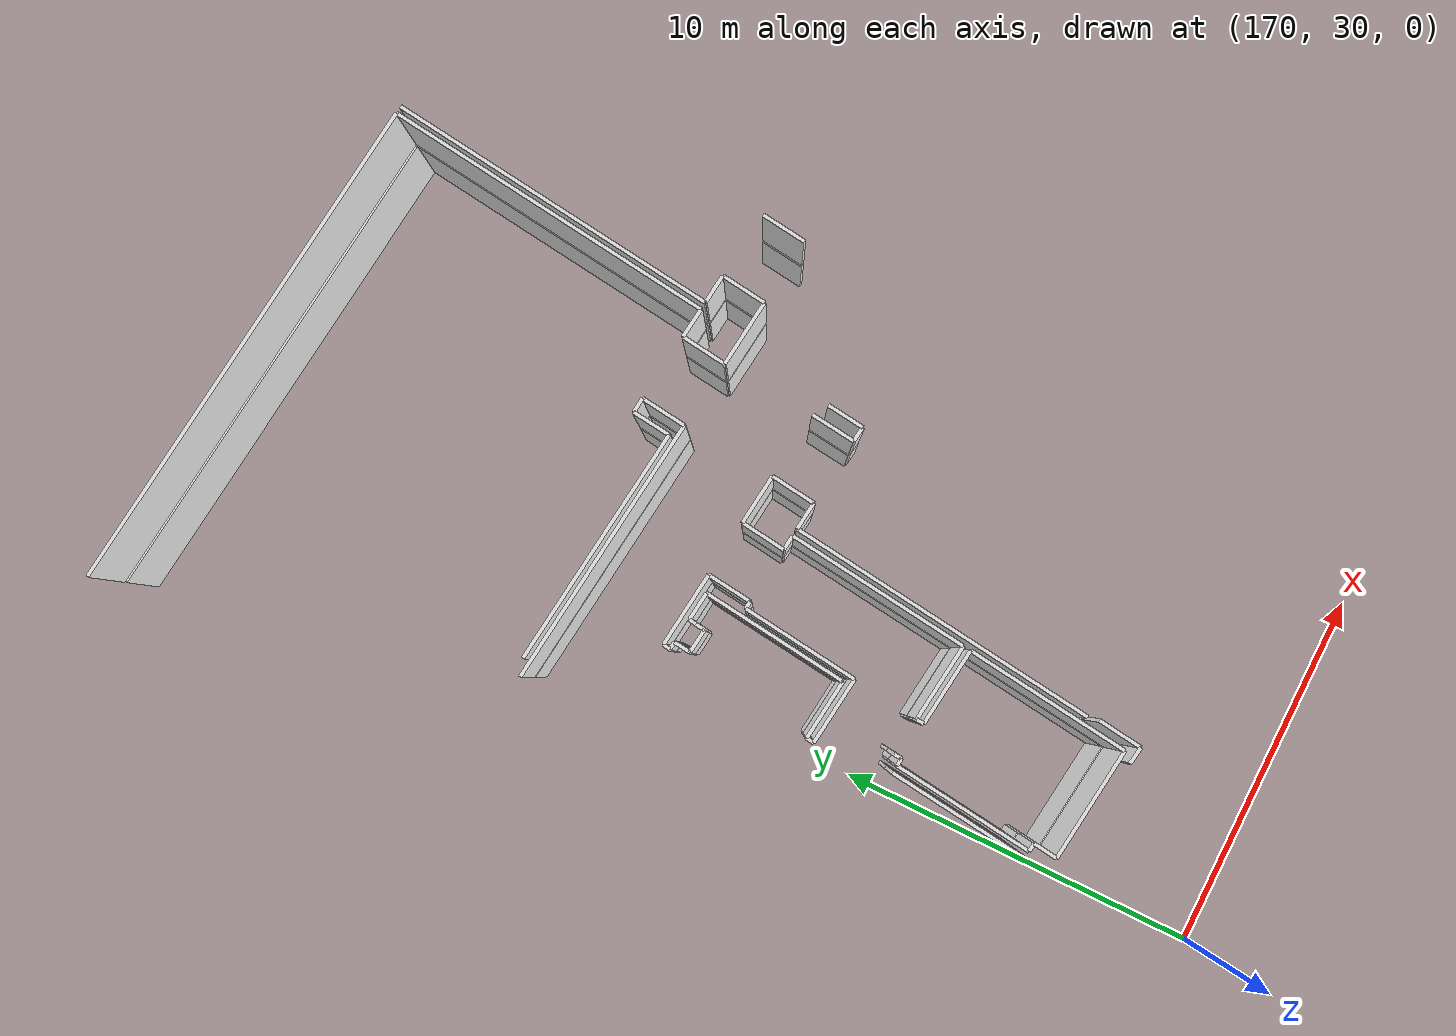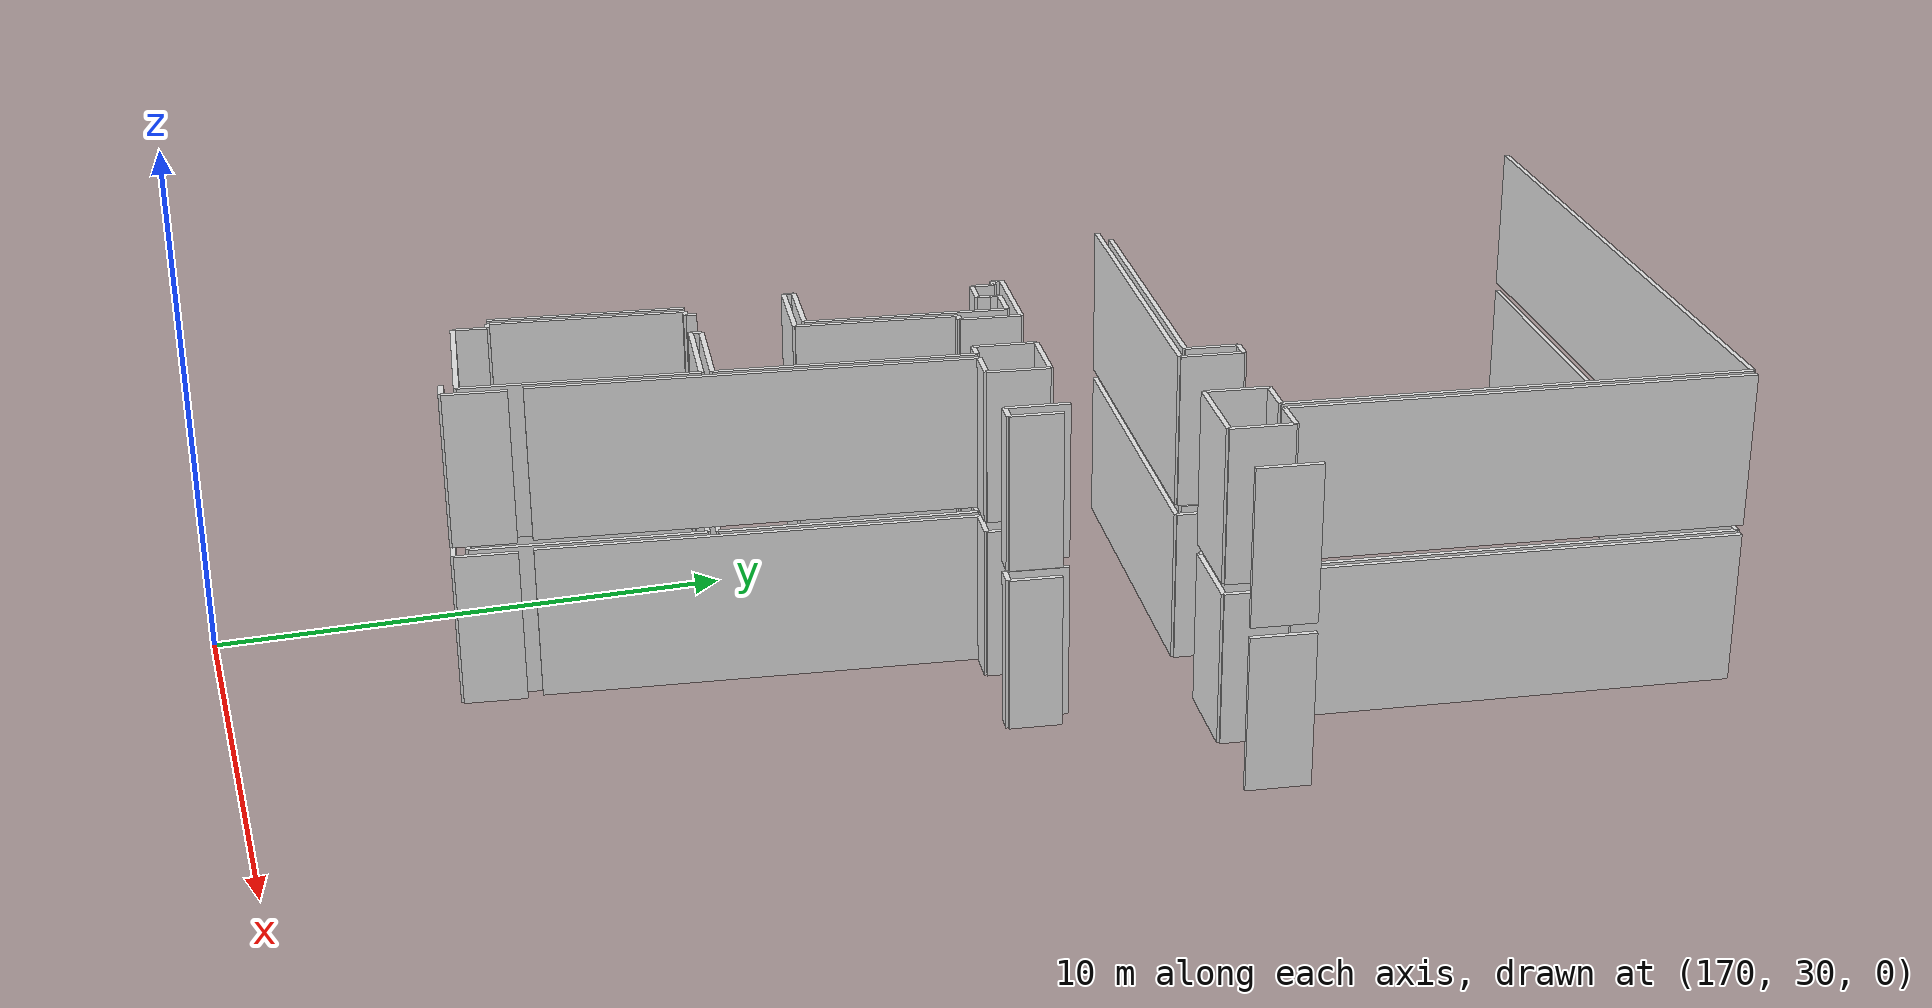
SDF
<sdf version="1.6">
 <world name="default">
  <model name="wall_179.4_48.5_0.0_link">
   <static>true</static>
   <pose>179.35000000000582 48.46499999985099 1.5 0 0 3.026716048357006</pose>
   <link name="link">
    <visual name="visual">
     <geometry><box><size>0.7851751396509952 0.1 3</size></box></geometry>
     <material>
      <script><uri>file://media/materials/scripts/gazebo.material</uri><name>Gazebo/White</name></script>
     </material>
    </visual>
   </link>
  </model>
  <model name="wall_179.5_52.9_0.0_link">
   <static>true</static>
   <pose>179.49500000002445 52.949999999953434 1.5 0 0 1.4508789678012857</pose>
   <link name="link">
    <visual name="visual">
     <geometry><box><size>8.944232779076149 0.1 3</size></box></geometry>
     <material>
      <script><uri>file://media/materials/scripts/gazebo.material</uri><name>Gazebo/White</name></script>
     </material>
    </visual>
   </link>
  </model>
  <model name="wall_170.4_37.5_0.0_link">
   <static>true</static>
   <pose>170.44499999997788 37.53000000002794 1.5 0 0 -1.6899106225096845</pose>
   <link name="link">
    <visual name="visual">
     <geometry><box><size>3.7868324496644155 0.1 3</size></box></geometry>
     <material>
      <script><uri>file://media/materials/scripts/gazebo.material</uri><name>Gazebo/White</name></script>
     </material>
    </visual>
   </link>
  </model>
  <model name="wall_177.6_44.4_0.0_link">
   <static>true</static>
   <pose>177.55999999999767 44.35499999998137 1.5 0 0 -1.6879050713333807</pose>
   <link name="link">
    <visual name="visual">
     <geometry><box><size>1.1982069942122657 0.1 3</size></box></geometry>
     <material>
      <script><uri>file://media/materials/scripts/gazebo.material</uri><name>Gazebo/White</name></script>
     </material>
    </visual>
   </link>
  </model>
  <model name="wall_175.8_44.6_0.0_link">
   <static>true</static>
   <pose>175.77499999999418 44.56500000017695 1.5 0 0 1.4454072064764434</pose>
   <link name="link">
    <visual name="visual">
     <geometry><box><size>1.199416524755487 0.1 3</size></box></geometry>
     <material>
      <script><uri>file://media/materials/scripts/gazebo.material</uri><name>Gazebo/White</name></script>
     </material>
    </visual>
   </link>
  </model>
  <model name="wall_175.2_45.2_0.0_link">
   <static>true</static>
   <pose>175.17999999999302 45.23999999999069 1.5 0 0 3.0227523092521484</pose>
   <link name="link">
    <visual name="visual">
     <geometry><box><size>1.3495184325570784 0.1 3</size></box></geometry>
     <material>
      <script><uri>file://media/materials/scripts/gazebo.material</uri><name>Gazebo/White</name></script>
     </material>
    </visual>
   </link>
  </model>
  <model name="wall_174.4_44.7_0.0_link">
   <static>true</static>
   <pose>174.43499999999767 44.7249999998603 1.5 0 0 -1.696185447161499</pose>
   <link name="link">
    <visual name="visual">
     <geometry><box><size>1.1994165247627664 0.1 3</size></box></geometry>
     <material>
      <script><uri>file://media/materials/scripts/gazebo.material</uri><name>Gazebo/White</name></script>
     </material>
    </visual>
   </link>
  </model>
  <model name="wall_172.9_44.9_0.0_link">
   <static>true</static>
   <pose>172.94000000000233 44.90500000002794 1.5 0 0 1.4536875822110042</pose>
   <link name="link">
    <visual name="visual">
     <geometry><box><size>1.198206993749794 0.1 3</size></box></geometry>
     <material>
      <script><uri>file://media/materials/scripts/gazebo.material</uri><name>Gazebo/White</name></script>
     </material>
    </visual>
   </link>
  </model>
  <model name="wall_172.0_45.6_0.0_link">
   <static>true</static>
   <pose>172.0100000000093 45.62000000011176 1.5 0 0 3.0221637274612827</pose>
   <link name="link">
    <visual name="visual">
     <geometry><box><size>2.0143485299488986 0.1 3</size></box></geometry>
     <material>
      <script><uri>file://media/materials/scripts/gazebo.material</uri><name>Gazebo/White</name></script>
     </material>
    </visual>
   </link>
  </model>
  <model name="wall_171.0_45.6_0.0_link">
   <static>true</static>
   <pose>170.99499999999534 45.64500000001863 1.5 0 0 -1.7273982035881303</pose>
   <link name="link">
    <visual name="visual">
     <geometry><box><size>0.1923538410258384 0.1 3</size></box></geometry>
     <material>
      <script><uri>file://media/materials/scripts/gazebo.material</uri><name>Gazebo/White</name></script>
     </material>
    </visual>
   </link>
  </model>
  <model name="wall_172.4_48.1_0.0_link">
   <static>true</static>
   <pose>172.40499999999884 48.074999999953434 1.5 0 0 -0.11975615108864926</pose>
   <link name="link">
    <visual name="visual">
     <geometry><box><size>7.2821562740685915 0.1 3</size></box></geometry>
     <material>
      <script><uri>file://media/materials/scripts/gazebo.material</uri><name>Gazebo/White</name></script>
     </material>
    </visual>
   </link>
  </model>
  <model name="wall_176.1_48.2_0.0_link">
   <static>true</static>
   <pose>176.09500000000116 48.24500000011176 1.5 0 0 1.4474586259198403</pose>
   <link name="link">
    <visual name="visual">
     <geometry><box><size>1.2192620718694447 0.1 3</size></box></geometry>
     <material>
      <script><uri>file://media/materials/scripts/gazebo.material</uri><name>Gazebo/White</name></script>
     </material>
    </visual>
   </link>
  </model>
  <model name="wall_177.9_48.0_0.0_link">
   <static>true</static>
   <pose>177.8850000000093 48.02499999990687 1.5 0 0 -1.6941340277173305</pose>
   <link name="link">
    <visual name="visual">
     <geometry><box><size>1.2192620718766056 0.1 3</size></box></geometry>
     <material>
      <script><uri>file://media/materials/scripts/gazebo.material</uri><name>Gazebo/White</name></script>
     </material>
    </visual>
   </link>
  </model>
  <model name="wall_178.7_47.3_0.0_link">
   <static>true</static>
   <pose>178.70000000001164 47.31499999994412 1.5 0 0 -0.11743468977405322</pose>
   <link name="link">
    <visual name="visual">
     <geometry><box><size>1.7923448329168745 0.1 3</size></box></geometry>
     <material>
      <script><uri>file://media/materials/scripts/gazebo.material</uri><name>Gazebo/White</name></script>
     </material>
    </visual>
   </link>
  </model>
  <model name="wall_179.7_47.8_0.0_link">
   <static>true</static>
   <pose>179.66500000000815 47.81499999994412 1.5 0 0 1.4474586259198403</pose>
   <link name="link">
    <visual name="visual">
     <geometry><box><size>1.2192620718694447 0.1 3</size></box></geometry>
     <material>
      <script><uri>file://media/materials/scripts/gazebo.material</uri><name>Gazebo/White</name></script>
     </material>
    </visual>
   </link>
  </model>
  <model name="wall_181.5_47.6_0.0_link">
   <static>true</static>
   <pose>181.4550000000163 47.59500000020489 1.5 0 0 -1.6941340277173305</pose>
   <link name="link">
    <visual name="visual">
     <geometry><box><size>1.2192620718766056 0.1 3</size></box></geometry>
     <material>
      <script><uri>file://media/materials/scripts/gazebo.material</uri><name>Gazebo/White</name></script>
     </material>
    </visual>
   </link>
  </model>
  <model name="wall_172.2_45.4_0.0_link">
   <static>true</static>
   <pose>172.21000000002095 45.39500000001863 1.5 0 0 -0.11787210300242888</pose>
   <link name="link">
    <visual name="visual">
     <geometry><box><size>0.7653103945376242 0.1 3</size></box></geometry>
     <material>
      <script><uri>file://media/materials/scripts/gazebo.material</uri><name>Gazebo/White</name></script>
     </material>
    </visual>
   </link>
  </model>
  <model name="wall_172.4_43.4_0.0_link">
   <static>true</static>
   <pose>172.35500000001048 43.39500000001863 1.5 0 0 -1.69042694704516</pose>
   <link name="link">
    <visual name="visual">
     <geometry><box><size>3.938146772429098 0.1 3</size></box></geometry>
     <material>
      <script><uri>file://media/materials/scripts/gazebo.material</uri><name>Gazebo/White</name></script>
     </material>
    </visual>
   </link>
  </model>
  <model name="wall_171.3_41.5_0.0_link">
   <static>true</static>
   <pose>171.31500000000233 41.53499999991618 1.5 0 0 3.024123548711388</pose>
   <link name="link">
    <visual name="visual">
     <geometry><box><size>1.6211724152395952 0.1 3</size></box></geometry>
     <material>
      <script><uri>file://media/materials/scripts/gazebo.material</uri><name>Gazebo/White</name></script>
     </material>
    </visual>
   </link>
  </model>
  <model name="wall_171.1_45.5_0.0_link">
   <static>true</static>
   <pose>171.0799999999872 45.53499999991618 1.5 0 0 -0.14888994659904642</pose>
   <link name="link">
    <visual name="visual">
     <geometry><box><size>0.20223748414268597 0.1 3</size></box></geometry>
     <material>
      <script><uri>file://media/materials/scripts/gazebo.material</uri><name>Gazebo/White</name></script>
     </material>
    </visual>
   </link>
  </model>
  <model name="wall_171.2_45.3_0.0_link">
   <static>true</static>
   <pose>171.15499999999884 45.300000000046566 1.5 0 0 -1.6839473083735081</pose>
   <link name="link">
    <visual name="visual">
     <geometry><box><size>0.4428317964528541 0.1 3</size></box></geometry>
     <material>
      <script><uri>file://media/materials/scripts/gazebo.material</uri><name>Gazebo/White</name></script>
     </material>
    </visual>
   </link>
  </model>
  <model name="wall_171.5_45.0_0.0_link">
   <static>true</static>
   <pose>171.45000000001164 45.04000000003725 1.5 0 0 -0.12435499465869924</pose>
   <link name="link">
    <visual name="visual">
     <geometry><box><size>0.6449806198869872 0.1 3</size></box></geometry>
     <material>
      <script><uri>file://media/materials/scripts/gazebo.material</uri><name>Gazebo/White</name></script>
     </material>
    </visual>
   </link>
  </model>
  <model name="wall_171.8_45.1_0.0_link">
   <static>true</static>
   <pose>171.7850000000035 45.125 1.5 0 0 1.4513674008959114</pose>
   <link name="link">
    <visual name="visual">
     <geometry><box><size>0.25179356623667715 0.1 3</size></box></geometry>
     <material>
      <script><uri>file://media/materials/scripts/gazebo.material</uri><name>Gazebo/White</name></script>
     </material>
    </visual>
   </link>
  </model>
  <model name="wall_171.8_45.3_0.0_link">
   <static>true</static>
   <pose>171.81500000000233 45.34499999997206 1.5 0 0 1.4141944496240997</pose>
   <link name="link">
    <visual name="visual">
     <geometry><box><size>0.19235384056587543 0.1 3</size></box></geometry>
     <material>
      <script><uri>file://media/materials/scripts/gazebo.material</uri><name>Gazebo/White</name></script>
     </material>
    </visual>
   </link>
  </model>
  <model name="wall_178.4_48.6_0.0_link">
   <static>true</static>
   <pose>178.36000000001513 48.579999999841675 1.5 0 0 3.0172376589266166</pose>
   <link name="link">
    <visual name="visual">
     <geometry><box><size>0.806225774829855 0.1 3</size></box></geometry>
     <material>
      <script><uri>file://media/materials/scripts/gazebo.material</uri><name>Gazebo/White</name></script>
     </material>
    </visual>
   </link>
  </model>
  <model name="wall_176.0_48.9_0.0_link">
   <static>true</static>
   <pose>175.97000000000116 48.87000000011176 1.5 0 0 3.0419240009977764</pose>
   <link name="link">
    <visual name="visual">
     <geometry><box><size>0.4019950248137912 0.1 3</size></box></geometry>
     <material>
      <script><uri>file://media/materials/scripts/gazebo.material</uri><name>Gazebo/White</name></script>
     </material>
    </visual>
   </link>
  </model>
  <model name="wall_175.7_48.4_0.0_link">
   <static>true</static>
   <pose>175.71000000002095 48.38000000012107 1.5 0 0 -1.687905071355139</pose>
   <link name="link">
    <visual name="visual">
     <geometry><box><size>1.0270345661353761 0.1 3</size></box></geometry>
     <material>
      <script><uri>file://media/materials/scripts/gazebo.material</uri><name>Gazebo/White</name></script>
     </material>
    </visual>
   </link>
  </model>
  <model name="wall_172.4_48.3_0.0_link">
   <static>true</static>
   <pose>172.43499999999767 48.26000000000931 1.5 0 0 3.0208760957199403</pose>
   <link name="link">
    <visual name="visual">
     <geometry><box><size>6.4771367131116735 0.1 3</size></box></geometry>
     <material>
      <script><uri>file://media/materials/scripts/gazebo.material</uri><name>Gazebo/White</name></script>
     </material>
    </visual>
   </link>
  </model>
  <model name="wall_173.1_58.2_0.0_link">
   <static>true</static>
   <pose>173.09500000000116 58.21999999997206 1.5 0 0 -0.11951661708533105</pose>
   <link name="link">
    <visual name="visual">
     <geometry><box><size>13.586923860836658 0.1 3</size></box></geometry>
     <material>
      <script><uri>file://media/materials/scripts/gazebo.material</uri><name>Gazebo/White</name></script>
     </material>
    </visual>
   </link>
  </model>
  <model name="wall_179.3_53.0_0.0_link">
   <static>true</static>
   <pose>179.30000000001746 52.96999999997206 1.5 0 0 -1.6918235466011338</pose>
   <link name="link">
    <visual name="visual">
     <geometry><box><size>8.945434590131466 0.1 3</size></box></geometry>
     <material>
      <script><uri>file://media/materials/scripts/gazebo.material</uri><name>Gazebo/White</name></script>
     </material>
    </visual>
   </link>
  </model>
  <model name="wall_178.0_44.2_0.0_link">
   <static>true</static>
   <pose>177.95000000001164 44.205000000074506 1.5 0 0 -1.6914199953433933</pose>
   <link name="link">
    <visual name="visual">
     <geometry><box><size>0.9972462085370126 0.1 3</size></box></geometry>
     <material>
      <script><uri>file://media/materials/scripts/gazebo.material</uri><name>Gazebo/White</name></script>
     </material>
    </visual>
   </link>
  </model>
  <model name="wall_177.7_43.7_0.0_link">
   <static>true</static>
   <pose>177.69000000000233 43.734999999869615 1.5 0 0 3.017237659508693</pose>
   <link name="link">
    <visual name="visual">
     <geometry><box><size>0.4031128874149275 0.1 3</size></box></geometry>
     <material>
      <script><uri>file://media/materials/scripts/gazebo.material</uri><name>Gazebo/White</name></script>
     </material>
    </visual>
   </link>
  </model>
  <model name="wall_175.3_44.0_0.0_link">
   <static>true</static>
   <pose>175.3300000000163 44.015000000130385 1.5 0 0 3.0205654339775116</pose>
   <link name="link">
    <visual name="visual">
     <geometry><box><size>0.7454528824542799 0.1 3</size></box></geometry>
     <material>
      <script><uri>file://media/materials/scripts/gazebo.material</uri><name>Gazebo/White</name></script>
     </material>
    </visual>
   </link>
  </model>
  <model name="wall_174.5_39.9_0.0_link">
   <static>true</static>
   <pose>174.4550000000163 39.90500000002794 1.5 0 0 -1.6917434222515764</pose>
   <link name="link">
    <visual name="visual">
     <geometry><box><size>8.371152847783126 0.1 3</size></box></geometry>
     <material>
      <script><uri>file://media/materials/scripts/gazebo.material</uri><name>Gazebo/White</name></script>
     </material>
    </visual>
   </link>
  </model>
  <model name="wall_171.0_39.4_0.0_link">
   <static>true</static>
   <pose>170.97000000000116 39.36999999987893 1.5 0 0 -0.09966865257760905</pose>
   <link name="link">
    <visual name="visual">
     <geometry><box><size>0.20099751243585498 0.1 3</size></box></geometry>
     <material>
      <script><uri>file://media/materials/scripts/gazebo.material</uri><name>Gazebo/White</name></script>
     </material>
    </visual>
   </link>
  </model>
  <model name="wall_173.1_39.1_0.0_link">
   <static>true</static>
   <pose>173.10500000001048 39.11500000022352 1.5 0 0 -0.11905156754423915</pose>
   <link name="link">
    <visual name="visual">
     <geometry><box><size>2.1048990474859015 0.1 3</size></box></geometry>
     <material>
      <script><uri>file://media/materials/scripts/gazebo.material</uri><name>Gazebo/White</name></script>
     </material>
    </visual>
   </link>
  </model>
  <model name="wall_173.9_36.8_0.0_link">
   <static>true</static>
   <pose>173.88000000000466 36.79000000003725 1.5 0 0 -1.6929129367177644</pose>
   <link name="link">
    <visual name="visual">
     <geometry><box><size>4.43301252009494 0.1 3</size></box></geometry>
     <material>
      <script><uri>file://media/materials/scripts/gazebo.material</uri><name>Gazebo/White</name></script>
     </material>
    </visual>
   </link>
  </model>
  <model name="wall_172.1_34.8_0.0_link">
   <static>true</static>
   <pose>172.08499999999185 34.77499999990687 1.5 0 0 3.020871070550642</pose>
   <link name="link">
    <visual name="visual">
     <geometry><box><size>3.0723606559145504 0.1 3</size></box></geometry>
     <material>
      <script><uri>file://media/materials/scripts/gazebo.material</uri><name>Gazebo/White</name></script>
     </material>
    </visual>
   </link>
  </model>
  <model name="wall_170.6_35.3_0.0_link">
   <static>true</static>
   <pose>170.60000000000582 35.28000000002794 1.5 0 0 1.446441332248135</pose>
   <link name="link">
    <visual name="visual">
     <geometry><box><size>0.6449806199952839 0.1 3</size></box></geometry>
     <material>
      <script><uri>file://media/materials/scripts/gazebo.material</uri><name>Gazebo/White</name></script>
     </material>
    </visual>
   </link>
  </model>
  <model name="wall_170.5_35.6_0.0_link">
   <static>true</static>
   <pose>170.52999999999884 35.61499999999069 1.5 0 0 3.006064940537032</pose>
   <link name="link">
    <visual name="visual">
     <geometry><box><size>0.22203603311405212 0.1 3</size></box></geometry>
     <material>
      <script><uri>file://media/materials/scripts/gazebo.material</uri><name>Gazebo/White</name></script>
     </material>
    </visual>
   </link>
  </model>
  <model name="wall_170.6_37.5_0.0_link">
   <static>true</static>
   <pose>170.64499999998952 37.50499999988824 1.5 0 0 1.4513674007734978</pose>
   <link name="link">
    <visual name="visual">
     <geometry><box><size>3.7769034936056385 0.1 3</size></box></geometry>
     <material>
      <script><uri>file://media/materials/scripts/gazebo.material</uri><name>Gazebo/White</name></script>
     </material>
    </visual>
   </link>
  </model>
  <model name="wall_170.5_41.5_0.0_link">
   <static>true</static>
   <pose>170.49499999999534 41.53000000002794 1.5 0 0 -1.7196862747459547</pose>
   <link name="link">
    <visual name="visual">
     <geometry><box><size>0.2022374838894058 0.1 3</size></box></geometry>
     <material>
      <script><uri>file://media/materials/scripts/gazebo.material</uri><name>Gazebo/White</name></script>
     </material>
    </visual>
   </link>
  </model>
  <model name="wall_171.4_41.3_0.0_link">
   <static>true</static>
   <pose>171.3849999999802 41.32000000006519 1.5 0 0 -0.1209536472312257</pose>
   <link name="link">
    <visual name="visual">
     <geometry><box><size>1.823321145624578 0.1 3</size></box></geometry>
     <material>
      <script><uri>file://media/materials/scripts/gazebo.material</uri><name>Gazebo/White</name></script>
     </material>
    </visual>
   </link>
  </model>
  <model name="wall_172.5_42.8_0.0_link">
   <static>true</static>
   <pose>172.47999999998137 42.77000000001863 1.5 0 0 1.4495983856926966</pose>
   <link name="link">
    <visual name="visual">
     <geometry><box><size>3.1430558379864832 0.1 3</size></box></geometry>
     <material>
      <script><uri>file://media/materials/scripts/gazebo.material</uri><name>Gazebo/White</name></script>
     </material>
    </visual>
   </link>
  </model>
  <model name="wall_172.8_44.3_0.0_link">
   <static>true</static>
   <pose>172.76999999998952 44.32000000006519 1.5 0 0 -0.09966865257760905</pose>
   <link name="link">
    <visual name="visual">
     <geometry><box><size>0.20099751243585498 0.1 3</size></box></geometry>
     <material>
      <script><uri>file://media/materials/scripts/gazebo.material</uri><name>Gazebo/White</name></script>
     </material>
    </visual>
   </link>
  </model>
  <model name="wall_174.6_44.1_0.0_link">
   <static>true</static>
   <pose>174.55999999999767 44.10499999998137 1.5 0 0 -0.12435499408110015</pose>
   <link name="link">
    <visual name="visual">
     <geometry><box><size>0.4031128874149275 0.1 3</size></box></geometry>
     <material>
      <script><uri>file://media/materials/scripts/gazebo.material</uri><name>Gazebo/White</name></script>
     </material>
    </visual>
   </link>
  </model>
  <model name="wall_174.5_41.6_0.0_link">
   <static>true</static>
   <pose>174.4649999999965 41.63500000000931 1.5 0 0 -1.690870309974588</pose>
   <link name="link">
    <visual name="visual">
     <geometry><box><size>4.925464445238173 0.1 3</size></box></geometry>
     <material>
      <script><uri>file://media/materials/scripts/gazebo.material</uri><name>Gazebo/White</name></script>
     </material>
    </visual>
   </link>
  </model>
  <model name="wall_173.1_39.3_0.0_link">
   <static>true</static>
   <pose>173.125 39.31499999994412 1.5 0 0 3.0225410860422697</pose>
   <link name="link">
    <visual name="visual">
     <geometry><box><size>2.104899047428106 0.1 3</size></box></geometry>
     <material>
      <script><uri>file://media/materials/scripts/gazebo.material</uri><name>Gazebo/White</name></script>
     </material>
    </visual>
   </link>
  </model>
  <model name="wall_172.1_39.3_0.0_link">
   <static>true</static>
   <pose>172.07000000000698 39.34000000008382 1.5 0 0 -1.670464979516584</pose>
   <link name="link">
    <visual name="visual">
     <geometry><box><size>0.20099751214626105 0.1 3</size></box></geometry>
     <material>
      <script><uri>file://media/materials/scripts/gazebo.material</uri><name>Gazebo/White</name></script>
     </material>
    </visual>
   </link>
  </model>
  <model name="wall_171.1_39.5_0.0_link">
   <static>true</static>
   <pose>171.0800000000163 39.45999999996275 1.5 0 0 1.4711276743037347</pose>
   <link name="link">
    <visual name="visual">
     <geometry><box><size>0.20099751260961132 0.1 3</size></box></geometry>
     <material>
      <script><uri>file://media/materials/scripts/gazebo.material</uri><name>Gazebo/White</name></script>
     </material>
    </visual>
   </link>
  </model>
  <model name="wall_173.6_34.3_0.0_link">
   <static>true</static>
   <pose>173.6149999999907 34.31499999994412 1.5 0 0 -0.14784936588774888</pose>
   <link name="link">
    <visual name="visual">
     <geometry><box><size>0.4751841748369362 0.1 3</size></box></geometry>
     <material>
      <script><uri>file://media/materials/scripts/gazebo.material</uri><name>Gazebo/White</name></script>
     </material>
    </visual>
   </link>
  </model>
  <model name="wall_173.9_34.9_0.0_link">
   <static>true</static>
   <pose>173.92499999998836 34.86999999987893 1.5 0 0 1.4443558295348613</pose>
   <link name="link">
    <visual name="visual">
     <geometry><box><size>1.1894956916284358 0.1 3</size></box></geometry>
     <material>
      <script><uri>file://media/materials/scripts/gazebo.material</uri><name>Gazebo/White</name></script>
     </material>
    </visual>
   </link>
  </model>
  <model name="wall_179.4_48.5_3.2_link">
   <static>true</static>
   <pose>179.35000000000582 48.46499999985099 4.7 0 0 3.026716048357006</pose>
   <link name="link">
    <visual name="visual">
     <geometry><box><size>0.7851751396509952 0.1 3</size></box></geometry>
     <material>
      <script><uri>file://media/materials/scripts/gazebo.material</uri><name>Gazebo/White</name></script>
     </material>
    </visual>
   </link>
  </model>
  <model name="wall_179.5_52.9_3.2_link">
   <static>true</static>
   <pose>179.49500000002445 52.949999999953434 4.7 0 0 1.4508789678012857</pose>
   <link name="link">
    <visual name="visual">
     <geometry><box><size>8.944232779076149 0.1 3</size></box></geometry>
     <material>
      <script><uri>file://media/materials/scripts/gazebo.material</uri><name>Gazebo/White</name></script>
     </material>
    </visual>
   </link>
  </model>
  <model name="wall_170.4_37.5_3.2_link">
   <static>true</static>
   <pose>170.44499999997788 37.53000000002794 4.7 0 0 -1.6899106225096845</pose>
   <link name="link">
    <visual name="visual">
     <geometry><box><size>3.7868324496644155 0.1 3</size></box></geometry>
     <material>
      <script><uri>file://media/materials/scripts/gazebo.material</uri><name>Gazebo/White</name></script>
     </material>
    </visual>
   </link>
  </model>
  <model name="wall_177.6_44.4_3.2_link">
   <static>true</static>
   <pose>177.55999999999767 44.35499999998137 4.7 0 0 -1.6879050713333807</pose>
   <link name="link">
    <visual name="visual">
     <geometry><box><size>1.1982069942122657 0.1 3</size></box></geometry>
     <material>
      <script><uri>file://media/materials/scripts/gazebo.material</uri><name>Gazebo/White</name></script>
     </material>
    </visual>
   </link>
  </model>
  <model name="wall_175.8_44.6_3.2_link">
   <static>true</static>
   <pose>175.77499999999418 44.56500000017695 4.7 0 0 1.4454072064764434</pose>
   <link name="link">
    <visual name="visual">
     <geometry><box><size>1.199416524755487 0.1 3</size></box></geometry>
     <material>
      <script><uri>file://media/materials/scripts/gazebo.material</uri><name>Gazebo/White</name></script>
     </material>
    </visual>
   </link>
  </model>
  <model name="wall_175.2_45.2_3.2_link">
   <static>true</static>
   <pose>175.17999999999302 45.23999999999069 4.7 0 0 3.0227523092521484</pose>
   <link name="link">
    <visual name="visual">
     <geometry><box><size>1.3495184325570784 0.1 3</size></box></geometry>
     <material>
      <script><uri>file://media/materials/scripts/gazebo.material</uri><name>Gazebo/White</name></script>
     </material>
    </visual>
   </link>
  </model>
  <model name="wall_174.4_44.7_3.2_link">
   <static>true</static>
   <pose>174.43499999999767 44.7249999998603 4.7 0 0 -1.696185447161499</pose>
   <link name="link">
    <visual name="visual">
     <geometry><box><size>1.1994165247627664 0.1 3</size></box></geometry>
     <material>
      <script><uri>file://media/materials/scripts/gazebo.material</uri><name>Gazebo/White</name></script>
     </material>
    </visual>
   </link>
  </model>
  <model name="wall_172.9_44.9_3.2_link">
   <static>true</static>
   <pose>172.94000000000233 44.90500000002794 4.7 0 0 1.4536875822110042</pose>
   <link name="link">
    <visual name="visual">
     <geometry><box><size>1.198206993749794 0.1 3</size></box></geometry>
     <material>
      <script><uri>file://media/materials/scripts/gazebo.material</uri><name>Gazebo/White</name></script>
     </material>
    </visual>
   </link>
  </model>
  <model name="wall_172.0_45.6_3.2_link">
   <static>true</static>
   <pose>172.0100000000093 45.62000000011176 4.7 0 0 3.0221637274612827</pose>
   <link name="link">
    <visual name="visual">
     <geometry><box><size>2.0143485299488986 0.1 3</size></box></geometry>
     <material>
      <script><uri>file://media/materials/scripts/gazebo.material</uri><name>Gazebo/White</name></script>
     </material>
    </visual>
   </link>
  </model>
  <model name="wall_171.0_45.6_3.2_link">
   <static>true</static>
   <pose>170.99499999999534 45.64500000001863 4.7 0 0 -1.7273982035881303</pose>
   <link name="link">
    <visual name="visual">
     <geometry><box><size>0.1923538410258384 0.1 3</size></box></geometry>
     <material>
      <script><uri>file://media/materials/scripts/gazebo.material</uri><name>Gazebo/White</name></script>
     </material>
    </visual>
   </link>
  </model>
  <model name="wall_172.4_48.1_3.2_link">
   <static>true</static>
   <pose>172.40499999999884 48.074999999953434 4.7 0 0 -0.11975615108864926</pose>
   <link name="link">
    <visual name="visual">
     <geometry><box><size>7.2821562740685915 0.1 3</size></box></geometry>
     <material>
      <script><uri>file://media/materials/scripts/gazebo.material</uri><name>Gazebo/White</name></script>
     </material>
    </visual>
   </link>
  </model>
  <model name="wall_176.1_48.2_3.2_link">
   <static>true</static>
   <pose>176.09500000000116 48.24500000011176 4.7 0 0 1.4474586259198403</pose>
   <link name="link">
    <visual name="visual">
     <geometry><box><size>1.2192620718694447 0.1 3</size></box></geometry>
     <material>
      <script><uri>file://media/materials/scripts/gazebo.material</uri><name>Gazebo/White</name></script>
     </material>
    </visual>
   </link>
  </model>
  <model name="wall_177.9_48.0_3.2_link">
   <static>true</static>
   <pose>177.8850000000093 48.02499999990687 4.7 0 0 -1.6941340277173305</pose>
   <link name="link">
    <visual name="visual">
     <geometry><box><size>1.2192620718766056 0.1 3</size></box></geometry>
     <material>
      <script><uri>file://media/materials/scripts/gazebo.material</uri><name>Gazebo/White</name></script>
     </material>
    </visual>
   </link>
  </model>
  <model name="wall_178.7_47.3_3.2_link">
   <static>true</static>
   <pose>178.70000000001164 47.31499999994412 4.7 0 0 -0.11743468977405322</pose>
   <link name="link">
    <visual name="visual">
     <geometry><box><size>1.7923448329168745 0.1 3</size></box></geometry>
     <material>
      <script><uri>file://media/materials/scripts/gazebo.material</uri><name>Gazebo/White</name></script>
     </material>
    </visual>
   </link>
  </model>
  <model name="wall_179.7_47.8_3.2_link">
   <static>true</static>
   <pose>179.66500000000815 47.81499999994412 4.7 0 0 1.4474586259198403</pose>
   <link name="link">
    <visual name="visual">
     <geometry><box><size>1.2192620718694447 0.1 3</size></box></geometry>
     <material>
      <script><uri>file://media/materials/scripts/gazebo.material</uri><name>Gazebo/White</name></script>
     </material>
    </visual>
   </link>
  </model>
  <model name="wall_181.5_47.6_3.2_link">
   <static>true</static>
   <pose>181.4550000000163 47.59500000020489 4.7 0 0 -1.6941340277173305</pose>
   <link name="link">
    <visual name="visual">
     <geometry><box><size>1.2192620718766056 0.1 3</size></box></geometry>
     <material>
      <script><uri>file://media/materials/scripts/gazebo.material</uri><name>Gazebo/White</name></script>
     </material>
    </visual>
   </link>
  </model>
  <model name="wall_172.2_45.4_3.2_link">
   <static>true</static>
   <pose>172.21000000002095 45.39500000001863 4.7 0 0 -0.11787210300242888</pose>
   <link name="link">
    <visual name="visual">
     <geometry><box><size>0.7653103945376242 0.1 3</size></box></geometry>
     <material>
      <script><uri>file://media/materials/scripts/gazebo.material</uri><name>Gazebo/White</name></script>
     </material>
    </visual>
   </link>
  </model>
  <model name="wall_172.4_43.4_3.2_link">
   <static>true</static>
   <pose>172.35500000001048 43.39500000001863 4.7 0 0 -1.69042694704516</pose>
   <link name="link">
    <visual name="visual">
     <geometry><box><size>3.938146772429098 0.1 3</size></box></geometry>
     <material>
      <script><uri>file://media/materials/scripts/gazebo.material</uri><name>Gazebo/White</name></script>
     </material>
    </visual>
   </link>
  </model>
  <model name="wall_171.3_41.5_3.2_link">
   <static>true</static>
   <pose>171.31500000000233 41.53499999991618 4.7 0 0 3.024123548711388</pose>
   <link name="link">
    <visual name="visual">
     <geometry><box><size>1.6211724152395952 0.1 3</size></box></geometry>
     <material>
      <script><uri>file://media/materials/scripts/gazebo.material</uri><name>Gazebo/White</name></script>
     </material>
    </visual>
   </link>
  </model>
  <model name="wall_171.1_45.5_3.2_link">
   <static>true</static>
   <pose>171.0799999999872 45.53499999991618 4.7 0 0 -0.14888994659904642</pose>
   <link name="link">
    <visual name="visual">
     <geometry><box><size>0.20223748414268597 0.1 3</size></box></geometry>
     <material>
      <script><uri>file://media/materials/scripts/gazebo.material</uri><name>Gazebo/White</name></script>
     </material>
    </visual>
   </link>
  </model>
  <model name="wall_171.2_45.3_3.2_link">
   <static>true</static>
   <pose>171.15499999999884 45.300000000046566 4.7 0 0 -1.6839473083735081</pose>
   <link name="link">
    <visual name="visual">
     <geometry><box><size>0.4428317964528541 0.1 3</size></box></geometry>
     <material>
      <script><uri>file://media/materials/scripts/gazebo.material</uri><name>Gazebo/White</name></script>
     </material>
    </visual>
   </link>
  </model>
  <model name="wall_171.5_45.0_3.2_link">
   <static>true</static>
   <pose>171.45000000001164 45.04000000003725 4.7 0 0 -0.12435499465869924</pose>
   <link name="link">
    <visual name="visual">
     <geometry><box><size>0.6449806198869872 0.1 3</size></box></geometry>
     <material>
      <script><uri>file://media/materials/scripts/gazebo.material</uri><name>Gazebo/White</name></script>
     </material>
    </visual>
   </link>
  </model>
  <model name="wall_171.8_45.1_3.2_link">
   <static>true</static>
   <pose>171.7850000000035 45.125 4.7 0 0 1.4513674008959114</pose>
   <link name="link">
    <visual name="visual">
     <geometry><box><size>0.25179356623667715 0.1 3</size></box></geometry>
     <material>
      <script><uri>file://media/materials/scripts/gazebo.material</uri><name>Gazebo/White</name></script>
     </material>
    </visual>
   </link>
  </model>
  <model name="wall_171.8_45.3_3.2_link">
   <static>true</static>
   <pose>171.81500000000233 45.34499999997206 4.7 0 0 1.4141944496240997</pose>
   <link name="link">
    <visual name="visual">
     <geometry><box><size>0.19235384056587543 0.1 3</size></box></geometry>
     <material>
      <script><uri>file://media/materials/scripts/gazebo.material</uri><name>Gazebo/White</name></script>
     </material>
    </visual>
   </link>
  </model>
  <model name="wall_178.4_48.6_3.2_link">
   <static>true</static>
   <pose>178.36000000001513 48.579999999841675 4.7 0 0 3.0172376589266166</pose>
   <link name="link">
    <visual name="visual">
     <geometry><box><size>0.806225774829855 0.1 3</size></box></geometry>
     <material>
      <script><uri>file://media/materials/scripts/gazebo.material</uri><name>Gazebo/White</name></script>
     </material>
    </visual>
   </link>
  </model>
  <model name="wall_176.0_48.9_3.2_link">
   <static>true</static>
   <pose>175.97000000000116 48.87000000011176 4.7 0 0 3.0419240009977764</pose>
   <link name="link">
    <visual name="visual">
     <geometry><box><size>0.4019950248137912 0.1 3</size></box></geometry>
     <material>
      <script><uri>file://media/materials/scripts/gazebo.material</uri><name>Gazebo/White</name></script>
     </material>
    </visual>
   </link>
  </model>
  <model name="wall_175.7_48.4_3.2_link">
   <static>true</static>
   <pose>175.71000000002095 48.38000000012107 4.7 0 0 -1.687905071355139</pose>
   <link name="link">
    <visual name="visual">
     <geometry><box><size>1.0270345661353761 0.1 3</size></box></geometry>
     <material>
      <script><uri>file://media/materials/scripts/gazebo.material</uri><name>Gazebo/White</name></script>
     </material>
    </visual>
   </link>
  </model>
  <model name="wall_172.4_48.3_3.2_link">
   <static>true</static>
   <pose>172.43499999999767 48.26000000000931 4.7 0 0 3.0208760957199403</pose>
   <link name="link">
    <visual name="visual">
     <geometry><box><size>6.4771367131116735 0.1 3</size></box></geometry>
     <material>
      <script><uri>file://media/materials/scripts/gazebo.material</uri><name>Gazebo/White</name></script>
     </material>
    </visual>
   </link>
  </model>
  <model name="wall_173.1_58.2_3.2_link">
   <static>true</static>
   <pose>173.09500000000116 58.21999999997206 4.7 0 0 -0.11951661708533105</pose>
   <link name="link">
    <visual name="visual">
     <geometry><box><size>13.586923860836658 0.1 3</size></box></geometry>
     <material>
      <script><uri>file://media/materials/scripts/gazebo.material</uri><name>Gazebo/White</name></script>
     </material>
    </visual>
   </link>
  </model>
  <model name="wall_179.3_53.0_3.2_link">
   <static>true</static>
   <pose>179.30000000001746 52.96999999997206 4.7 0 0 -1.6918235466011338</pose>
   <link name="link">
    <visual name="visual">
     <geometry><box><size>8.945434590131466 0.1 3</size></box></geometry>
     <material>
      <script><uri>file://media/materials/scripts/gazebo.material</uri><name>Gazebo/White</name></script>
     </material>
    </visual>
   </link>
  </model>
  <model name="wall_178.0_44.2_3.2_link">
   <static>true</static>
   <pose>177.95000000001164 44.205000000074506 4.7 0 0 -1.6914199953433933</pose>
   <link name="link">
    <visual name="visual">
     <geometry><box><size>0.9972462085370126 0.1 3</size></box></geometry>
     <material>
      <script><uri>file://media/materials/scripts/gazebo.material</uri><name>Gazebo/White</name></script>
     </material>
    </visual>
   </link>
  </model>
  <model name="wall_177.7_43.7_3.2_link">
   <static>true</static>
   <pose>177.69000000000233 43.734999999869615 4.7 0 0 3.017237659508693</pose>
   <link name="link">
    <visual name="visual">
     <geometry><box><size>0.4031128874149275 0.1 3</size></box></geometry>
     <material>
      <script><uri>file://media/materials/scripts/gazebo.material</uri><name>Gazebo/White</name></script>
     </material>
    </visual>
   </link>
  </model>
  <model name="wall_175.3_44.0_3.2_link">
   <static>true</static>
   <pose>175.3300000000163 44.015000000130385 4.7 0 0 3.0205654339775116</pose>
   <link name="link">
    <visual name="visual">
     <geometry><box><size>0.7454528824542799 0.1 3</size></box></geometry>
     <material>
      <script><uri>file://media/materials/scripts/gazebo.material</uri><name>Gazebo/White</name></script>
     </material>
    </visual>
   </link>
  </model>
  <model name="wall_174.5_39.9_3.2_link">
   <static>true</static>
   <pose>174.4550000000163 39.90500000002794 4.7 0 0 -1.6917434222515764</pose>
   <link name="link">
    <visual name="visual">
     <geometry><box><size>8.371152847783126 0.1 3</size></box></geometry>
     <material>
      <script><uri>file://media/materials/scripts/gazebo.material</uri><name>Gazebo/White</name></script>
     </material>
    </visual>
   </link>
  </model>
  <model name="wall_171.0_39.4_3.2_link">
   <static>true</static>
   <pose>170.97000000000116 39.36999999987893 4.7 0 0 -0.09966865257760905</pose>
   <link name="link">
    <visual name="visual">
     <geometry><box><size>0.20099751243585498 0.1 3</size></box></geometry>
     <material>
      <script><uri>file://media/materials/scripts/gazebo.material</uri><name>Gazebo/White</name></script>
     </material>
    </visual>
   </link>
  </model>
  <model name="wall_173.1_39.1_3.2_link">
   <static>true</static>
   <pose>173.10500000001048 39.11500000022352 4.7 0 0 -0.11905156754423915</pose>
   <link name="link">
    <visual name="visual">
     <geometry><box><size>2.1048990474859015 0.1 3</size></box></geometry>
     <material>
      <script><uri>file://media/materials/scripts/gazebo.material</uri><name>Gazebo/White</name></script>
     </material>
    </visual>
   </link>
  </model>
  <model name="wall_173.9_36.8_3.2_link">
   <static>true</static>
   <pose>173.88000000000466 36.79000000003725 4.7 0 0 -1.6929129367177644</pose>
   <link name="link">
    <visual name="visual">
     <geometry><box><size>4.43301252009494 0.1 3</size></box></geometry>
     <material>
      <script><uri>file://media/materials/scripts/gazebo.material</uri><name>Gazebo/White</name></script>
     </material>
    </visual>
   </link>
  </model>
  <model name="wall_172.1_34.8_3.2_link">
   <static>true</static>
   <pose>172.08499999999185 34.77499999990687 4.7 0 0 3.020871070550642</pose>
   <link name="link">
    <visual name="visual">
     <geometry><box><size>3.0723606559145504 0.1 3</size></box></geometry>
     <material>
      <script><uri>file://media/materials/scripts/gazebo.material</uri><name>Gazebo/White</name></script>
     </material>
    </visual>
   </link>
  </model>
  <model name="wall_170.6_35.3_3.2_link">
   <static>true</static>
   <pose>170.60000000000582 35.28000000002794 4.7 0 0 1.446441332248135</pose>
   <link name="link">
    <visual name="visual">
     <geometry><box><size>0.6449806199952839 0.1 3</size></box></geometry>
     <material>
      <script><uri>file://media/materials/scripts/gazebo.material</uri><name>Gazebo/White</name></script>
     </material>
    </visual>
   </link>
  </model>
  <model name="wall_170.5_35.6_3.2_link">
   <static>true</static>
   <pose>170.52999999999884 35.61499999999069 4.7 0 0 3.006064940537032</pose>
   <link name="link">
    <visual name="visual">
     <geometry><box><size>0.22203603311405212 0.1 3</size></box></geometry>
     <material>
      <script><uri>file://media/materials/scripts/gazebo.material</uri><name>Gazebo/White</name></script>
     </material>
    </visual>
   </link>
  </model>
  <model name="wall_170.6_37.5_3.2_link">
   <static>true</static>
   <pose>170.64499999998952 37.50499999988824 4.7 0 0 1.4513674007734978</pose>
   <link name="link">
    <visual name="visual">
     <geometry><box><size>3.7769034936056385 0.1 3</size></box></geometry>
     <material>
      <script><uri>file://media/materials/scripts/gazebo.material</uri><name>Gazebo/White</name></script>
     </material>
    </visual>
   </link>
  </model>
  <model name="wall_170.5_41.5_3.2_link">
   <static>true</static>
   <pose>170.49499999999534 41.53000000002794 4.7 0 0 -1.7196862747459547</pose>
   <link name="link">
    <visual name="visual">
     <geometry><box><size>0.2022374838894058 0.1 3</size></box></geometry>
     <material>
      <script><uri>file://media/materials/scripts/gazebo.material</uri><name>Gazebo/White</name></script>
     </material>
    </visual>
   </link>
  </model>
  <model name="wall_171.4_41.3_3.2_link">
   <static>true</static>
   <pose>171.3849999999802 41.32000000006519 4.7 0 0 -0.1209536472312257</pose>
   <link name="link">
    <visual name="visual">
     <geometry><box><size>1.823321145624578 0.1 3</size></box></geometry>
     <material>
      <script><uri>file://media/materials/scripts/gazebo.material</uri><name>Gazebo/White</name></script>
     </material>
    </visual>
   </link>
  </model>
  <model name="wall_172.5_42.8_3.2_link">
   <static>true</static>
   <pose>172.47999999998137 42.77000000001863 4.7 0 0 1.4495983856926966</pose>
   <link name="link">
    <visual name="visual">
     <geometry><box><size>3.1430558379864832 0.1 3</size></box></geometry>
     <material>
      <script><uri>file://media/materials/scripts/gazebo.material</uri><name>Gazebo/White</name></script>
     </material>
    </visual>
   </link>
  </model>
  <model name="wall_172.8_44.3_3.2_link">
   <static>true</static>
   <pose>172.76999999998952 44.32000000006519 4.7 0 0 -0.09966865257760905</pose>
   <link name="link">
    <visual name="visual">
     <geometry><box><size>0.20099751243585498 0.1 3</size></box></geometry>
     <material>
      <script><uri>file://media/materials/scripts/gazebo.material</uri><name>Gazebo/White</name></script>
     </material>
    </visual>
   </link>
  </model>
  <model name="wall_174.6_44.1_3.2_link">
   <static>true</static>
   <pose>174.55999999999767 44.10499999998137 4.7 0 0 -0.12435499408110015</pose>
   <link name="link">
    <visual name="visual">
     <geometry><box><size>0.4031128874149275 0.1 3</size></box></geometry>
     <material>
      <script><uri>file://media/materials/scripts/gazebo.material</uri><name>Gazebo/White</name></script>
     </material>
    </visual>
   </link>
  </model>
  <model name="wall_174.5_41.6_3.2_link">
   <static>true</static>
   <pose>174.4649999999965 41.63500000000931 4.7 0 0 -1.690870309974588</pose>
   <link name="link">
    <visual name="visual">
     <geometry><box><size>4.925464445238173 0.1 3</size></box></geometry>
     <material>
      <script><uri>file://media/materials/scripts/gazebo.material</uri><name>Gazebo/White</name></script>
     </material>
    </visual>
   </link>
  </model>
  <model name="wall_173.1_39.3_3.2_link">
   <static>true</static>
   <pose>173.125 39.31499999994412 4.7 0 0 3.0225410860422697</pose>
   <link name="link">
    <visual name="visual">
     <geometry><box><size>2.104899047428106 0.1 3</size></box></geometry>
     <material>
      <script><uri>file://media/materials/scripts/gazebo.material</uri><name>Gazebo/White</name></script>
     </material>
    </visual>
   </link>
  </model>
  <model name="wall_172.1_39.3_3.2_link">
   <static>true</static>
   <pose>172.07000000000698 39.34000000008382 4.7 0 0 -1.670464979516584</pose>
   <link name="link">
    <visual name="visual">
     <geometry><box><size>0.20099751214626105 0.1 3</size></box></geometry>
     <material>
      <script><uri>file://media/materials/scripts/gazebo.material</uri><name>Gazebo/White</name></script>
     </material>
    </visual>
   </link>
  </model>
  <model name="wall_171.1_39.5_3.2_link">
   <static>true</static>
   <pose>171.0800000000163 39.45999999996275 4.7 0 0 1.4711276743037347</pose>
   <link name="link">
    <visual name="visual">
     <geometry><box><size>0.20099751260961132 0.1 3</size></box></geometry>
     <material>
      <script><uri>file://media/materials/scripts/gazebo.material</uri><name>Gazebo/White</name></script>
     </material>
    </visual>
   </link>
  </model>
  <model name="wall_173.6_34.3_3.2_link">
   <static>true</static>
   <pose>173.6149999999907 34.31499999994412 4.7 0 0 -0.14784936588774888</pose>
   <link name="link">
    <visual name="visual">
     <geometry><box><size>0.4751841748369362 0.1 3</size></box></geometry>
     <material>
      <script><uri>file://media/materials/scripts/gazebo.material</uri><name>Gazebo/White</name></script>
     </material>
    </visual>
   </link>
  </model>
  <model name="wall_173.9_34.9_3.2_link">
   <static>true</static>
   <pose>173.92499999998836 34.86999999987893 4.7 0 0 1.4443558295348613</pose>
   <link name="link">
    <visual name="visual">
     <geometry><box><size>1.1894956916284358 0.1 3</size></box></geometry>
     <material>
      <script><uri>file://media/materials/scripts/gazebo.material</uri><name>Gazebo/White</name></script>
     </material>
    </visual>
   </link>
  </model>
 </world>
</sdf>
